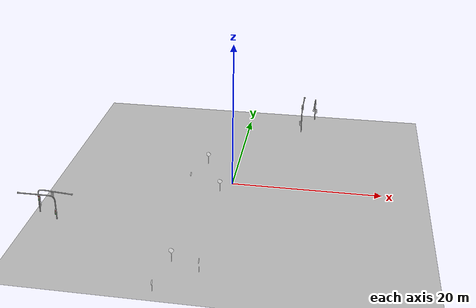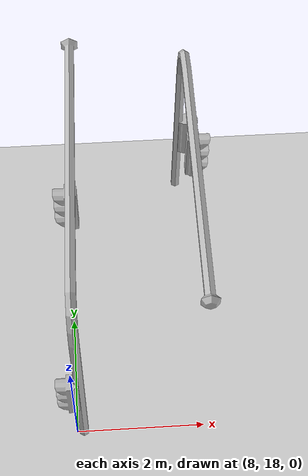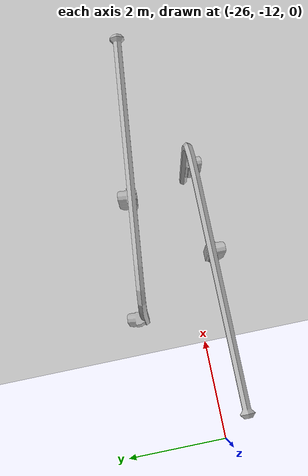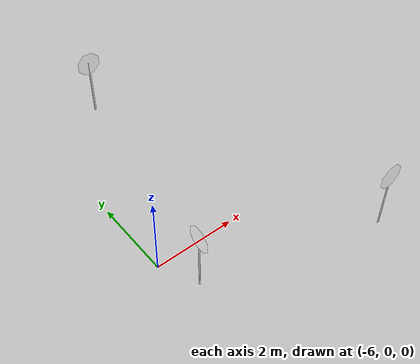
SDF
<sdf version="1.6">
 <world name="default">
  <scene>
   <grid>1</grid>
   <ambient>0.4 0.4 0.4 1</ambient>
   <background>0.7 0.7 0.7 1</background>
   <shadows>1</shadows>
  </scene>
  <light name="sun" type="directional">
   <pose>0 0 10 0 -0 0</pose>
   <diffuse>0.8 0.8 0.8 1</diffuse>
   <specular>0.2 0.2 0.2 1</specular>
   <attenuation>
    <range>1000</range>
    <constant>0.9</constant>
    <linear>0.01</linear>
    <quadratic>0.001</quadratic>
   </attenuation>
   <direction>-0.5 0.1 -0.9</direction>
  </light>
  <model name="ground">
   <link name="body">
    <collision name="geom">
     <geometry><plane><normal>0 0 1</normal><size>1 1</size></plane></geometry>
     <surface><friction><ode><mu>100</mu><mu2>50</mu2></ode></friction></surface>
    </collision>
   </link>
   <static>1</static>
  </model>
  <gravity>0 0 -9.8</gravity>
  <magnetic_field>6e-06 2.3e-05 -4.2e-05</magnetic_field>
  <atmosphere type="adiabatic"/>
  <physics name="default_physics" default="0" type="ode">
   <max_step_size>0.001</max_step_size>
   <real_time_factor>1</real_time_factor>
   <real_time_update_rate>1000</real_time_update_rate>
  </physics>
  <audio><device>default</device></audio>
  <spherical_coordinates>
   <surface_model>EARTH_WGS84</surface_model>
   <latitude_deg>0</latitude_deg>
   <longitude_deg>0</longitude_deg>
   <elevation>0</elevation>
   <heading_deg>0</heading_deg>
  </spherical_coordinates>
  <model name="track">
   <pose>1 -1 0 0 -0 0</pose>
   <static>1</static>
   <link name="link">
    <collision name="collision">
     <geometry><plane><size>50 50</size><normal>0 0 1</normal></plane></geometry>
     <surface><friction><ode><mu>100</mu><mu2>50</mu2></ode></friction></surface>
    </collision>
    <visual name="visual">
     <geometry><plane><size>50 50</size><normal>0 0 1</normal></plane></geometry>
     <material>
      <script><uri>file://media/materials/scripts/smile.material</uri><name>Smile/Track</name></script>
     </material>
    </visual>
   </link>
  </model>
  <model name="stop_light_post">
   <static>1</static>
   <link name="link">
    <collision name="post">
     <geometry>
      <mesh><uri>model://stop_light_post/meshes/stop_light_post.obj</uri><scale>0.01 0.01 0.01</scale></mesh>
     </geometry>
    </collision>
    <visual name="post">
     <geometry>
      <mesh><uri>model://stop_light_post/meshes/stop_light_post.obj</uri><scale>0.01 0.01 0.01</scale></mesh>
     </geometry>
    </visual>
   </link>
   <static>1</static>
   <link name="right_light::link">
    <collision name="collision">
     <geometry>
      <mesh><uri>model://stop_light/meshes/stop_light.obj</uri><scale>0.01 0.01 0.01</scale></mesh>
     </geometry>
    </collision>
    <visual name="frame">
     <geometry>
      <mesh><uri>model://stop_light/meshes/stop_light.obj</uri><scale>0.01 0.01 0.01</scale></mesh>
     </geometry>
    </visual>
    <visual name="red">
     <pose>-0.001123 -0.082251 -0.147514 0 -0 0</pose>
     <geometry><sphere><radius>0.1012</radius></sphere></geometry>
     <material>
      <script>
       <uri>model://stop_light/materials/scripts/</uri>
       <uri>model://stop_light/materials/textures/</uri>
       <name>StopLight/Light</name>
      </script>
      <ambient>1 0 0 1</ambient>
      <specular>1 0 0 1</specular>
     </material>
    </visual>
    <visual name="yellow">
     <pose>-0.001123 -0.082251 -0.402 0 -0 0</pose>
     <geometry><sphere><radius>0.1012</radius></sphere></geometry>
     <material>
      <script>
       <uri>model://stop_light/materials/scripts/</uri>
       <uri>model://stop_light/materials/textures/</uri>
       <name>StopLight/Light</name>
      </script>
      <ambient>1 1 0 1</ambient>
      <specular>1 1 0 1</specular>
     </material>
    </visual>
    <visual name="green">
     <pose>-0.001123 -0.082251 -0.655 0 -0 0</pose>
     <geometry><sphere><radius>0.1012</radius></sphere></geometry>
     <material>
      <script>
       <uri>model://stop_light/materials/scripts/</uri>
       <uri>model://stop_light/materials/textures/</uri>
       <name>StopLight/Light</name>
      </script>
      <ambient>0 1 0 1</ambient>
      <specular>0 1 0 1</specular>
     </material>
    </visual>
    <pose>0 -0.05 4 0 -0 0</pose>
   </link>
   <static>1</static>
   <link name="center_light::link">
    <collision name="collision">
     <geometry>
      <mesh><uri>model://stop_light/meshes/stop_light.obj</uri><scale>0.01 0.01 0.01</scale></mesh>
     </geometry>
    </collision>
    <visual name="frame">
     <geometry>
      <mesh><uri>model://stop_light/meshes/stop_light.obj</uri><scale>0.01 0.01 0.01</scale></mesh>
     </geometry>
    </visual>
    <visual name="red">
     <pose>-0.001123 -0.082251 -0.147514 0 -0 0</pose>
     <geometry><sphere><radius>0.1012</radius></sphere></geometry>
     <material>
      <script>
       <uri>model://stop_light/materials/scripts/</uri>
       <uri>model://stop_light/materials/textures/</uri>
       <name>StopLight/Light</name>
      </script>
      <ambient>1 0 0 1</ambient>
      <specular>1 0 0 1</specular>
     </material>
    </visual>
    <visual name="yellow">
     <pose>-0.001123 -0.082251 -0.402 0 -0 0</pose>
     <geometry><sphere><radius>0.1012</radius></sphere></geometry>
     <material>
      <script>
       <uri>model://stop_light/materials/scripts/</uri>
       <uri>model://stop_light/materials/textures/</uri>
       <name>StopLight/Light</name>
      </script>
      <ambient>1 1 0 1</ambient>
      <specular>1 1 0 1</specular>
     </material>
    </visual>
    <visual name="green">
     <pose>-0.001123 -0.082251 -0.655 0 -0 0</pose>
     <geometry><sphere><radius>0.1012</radius></sphere></geometry>
     <material>
      <script>
       <uri>model://stop_light/materials/scripts/</uri>
       <uri>model://stop_light/materials/textures/</uri>
       <name>StopLight/Light</name>
      </script>
      <ambient>0 1 0 1</ambient>
      <specular>0 1 0 1</specular>
     </material>
    </visual>
    <pose>-2 0.04 5.82 0 -0 0</pose>
   </link>
   <pose>8.10426 17.9995 -2.20286 0 0 -1.58993</pose>
  </model>
  <model name="stop_light_post_0">
   <static>1</static>
   <link name="link">
    <collision name="post">
     <geometry>
      <mesh><uri>model://stop_light_post/meshes/stop_light_post.obj</uri><scale>0.01 0.01 0.01</scale></mesh>
     </geometry>
    </collision>
    <visual name="post">
     <geometry>
      <mesh><uri>model://stop_light_post/meshes/stop_light_post.obj</uri><scale>0.01 0.01 0.01</scale></mesh>
     </geometry>
    </visual>
   </link>
   <static>1</static>
   <link name="right_light::link">
    <collision name="collision">
     <geometry>
      <mesh><uri>model://stop_light/meshes/stop_light.obj</uri><scale>0.01 0.01 0.01</scale></mesh>
     </geometry>
    </collision>
    <visual name="frame">
     <geometry>
      <mesh><uri>model://stop_light/meshes/stop_light.obj</uri><scale>0.01 0.01 0.01</scale></mesh>
     </geometry>
    </visual>
    <visual name="red">
     <pose>-0.001123 -0.082251 -0.147514 0 -0 0</pose>
     <geometry><sphere><radius>0.1012</radius></sphere></geometry>
     <material>
      <script>
       <uri>model://stop_light/materials/scripts/</uri>
       <uri>model://stop_light/materials/textures/</uri>
       <name>StopLight/Light</name>
      </script>
      <ambient>1 0 0 1</ambient>
      <specular>1 0 0 1</specular>
     </material>
    </visual>
    <visual name="yellow">
     <pose>-0.001123 -0.082251 -0.402 0 -0 0</pose>
     <geometry><sphere><radius>0.1012</radius></sphere></geometry>
     <material>
      <script>
       <uri>model://stop_light/materials/scripts/</uri>
       <uri>model://stop_light/materials/textures/</uri>
       <name>StopLight/Light</name>
      </script>
      <ambient>1 1 0 1</ambient>
      <specular>1 1 0 1</specular>
     </material>
    </visual>
    <visual name="green">
     <pose>-0.001123 -0.082251 -0.655 0 -0 0</pose>
     <geometry><sphere><radius>0.1012</radius></sphere></geometry>
     <material>
      <script>
       <uri>model://stop_light/materials/scripts/</uri>
       <uri>model://stop_light/materials/textures/</uri>
       <name>StopLight/Light</name>
      </script>
      <ambient>0 1 0 1</ambient>
      <specular>0 1 0 1</specular>
     </material>
    </visual>
    <pose>0 -0.05 4 0 -0 0</pose>
   </link>
   <static>1</static>
   <link name="center_light::link">
    <collision name="collision">
     <geometry>
      <mesh><uri>model://stop_light/meshes/stop_light.obj</uri><scale>0.01 0.01 0.01</scale></mesh>
     </geometry>
    </collision>
    <visual name="frame">
     <geometry>
      <mesh><uri>model://stop_light/meshes/stop_light.obj</uri><scale>0.01 0.01 0.01</scale></mesh>
     </geometry>
    </visual>
    <visual name="red">
     <pose>-0.001123 -0.082251 -0.147514 0 -0 0</pose>
     <geometry><sphere><radius>0.1012</radius></sphere></geometry>
     <material>
      <script>
       <uri>model://stop_light/materials/scripts/</uri>
       <uri>model://stop_light/materials/textures/</uri>
       <name>StopLight/Light</name>
      </script>
      <ambient>1 0 0 1</ambient>
      <specular>1 0 0 1</specular>
     </material>
    </visual>
    <visual name="yellow">
     <pose>-0.001123 -0.082251 -0.402 0 -0 0</pose>
     <geometry><sphere><radius>0.1012</radius></sphere></geometry>
     <material>
      <script>
       <uri>model://stop_light/materials/scripts/</uri>
       <uri>model://stop_light/materials/textures/</uri>
       <name>StopLight/Light</name>
      </script>
      <ambient>1 1 0 1</ambient>
      <specular>1 1 0 1</specular>
     </material>
    </visual>
    <visual name="green">
     <pose>-0.001123 -0.082251 -0.655 0 -0 0</pose>
     <geometry><sphere><radius>0.1012</radius></sphere></geometry>
     <material>
      <script>
       <uri>model://stop_light/materials/scripts/</uri>
       <uri>model://stop_light/materials/textures/</uri>
       <name>StopLight/Light</name>
      </script>
      <ambient>0 1 0 1</ambient>
      <specular>0 1 0 1</specular>
     </material>
    </visual>
    <pose>-2 0.04 5.82 0 -0 0</pose>
   </link>
   <pose>9.97222 22.9104 -2.23142 0 -0 1.54883</pose>
  </model>
  <model name="Stop Sign">
   <static>1</static>
   <link name="link">
    <collision name="collision">
     <geometry><mesh><uri>model://stop_sign/meshes/stop_sign.dae</uri></mesh></geometry>
    </collision>
    <visual name="visual">
     <geometry><mesh><uri>model://stop_sign/meshes/stop_sign.dae</uri></mesh></geometry>
     <material>
      <script>
       <uri>model://stop_sign/materials/scripts</uri>
       <uri>model://stop_sign/materials/textures</uri>
       <name>StopSign/Diffuse</name>
      </script>
     </material>
    </visual>
   </link>
   <pose>-4.27983 5.26385 0 0 -0 3.12862</pose>
  </model>
  <model name="Stop Sign_0">
   <static>1</static>
   <link name="link">
    <collision name="collision">
     <geometry><mesh><uri>model://stop_sign/meshes/stop_sign.dae</uri></mesh></geometry>
    </collision>
    <visual name="visual">
     <geometry><mesh><uri>model://stop_sign/meshes/stop_sign.dae</uri></mesh></geometry>
     <material>
      <script>
       <uri>model://stop_sign/materials/scripts</uri>
       <uri>model://stop_sign/materials/textures</uri>
       <name>StopSign/Diffuse</name>
      </script>
     </material>
    </visual>
   </link>
   <pose>-5.57571 -0.901496 0 0 0 -1.62958</pose>
  </model>
  <model name="Stop Sign_1">
   <static>1</static>
   <link name="link">
    <collision name="collision">
     <geometry><mesh><uri>model://stop_sign/meshes/stop_sign.dae</uri></mesh></geometry>
    </collision>
    <visual name="visual">
     <geometry><mesh><uri>model://stop_sign/meshes/stop_sign.dae</uri></mesh></geometry>
     <material>
      <script>
       <uri>model://stop_sign/materials/scripts</uri>
       <uri>model://stop_sign/materials/textures</uri>
       <name>StopSign/Diffuse</name>
      </script>
     </material>
    </visual>
   </link>
   <pose>-1.40463 -2.14026 0 0 -0 0</pose>
  </model>
  <model name="stop_light_post_1">
   <static>1</static>
   <link name="link">
    <collision name="post">
     <geometry>
      <mesh><uri>model://stop_light_post/meshes/stop_light_post.obj</uri><scale>0.01 0.01 0.01</scale></mesh>
     </geometry>
    </collision>
    <visual name="post">
     <geometry>
      <mesh><uri>model://stop_light_post/meshes/stop_light_post.obj</uri><scale>0.01 0.01 0.01</scale></mesh>
     </geometry>
    </visual>
   </link>
   <static>1</static>
   <link name="right_light::link">
    <collision name="collision">
     <geometry>
      <mesh><uri>model://stop_light/meshes/stop_light.obj</uri><scale>0.01 0.01 0.01</scale></mesh>
     </geometry>
    </collision>
    <visual name="frame">
     <geometry>
      <mesh><uri>model://stop_light/meshes/stop_light.obj</uri><scale>0.01 0.01 0.01</scale></mesh>
     </geometry>
    </visual>
    <visual name="red">
     <pose>-0.001123 -0.082251 -0.147514 0 -0 0</pose>
     <geometry><sphere><radius>0.1012</radius></sphere></geometry>
     <material>
      <script>
       <uri>model://stop_light/materials/scripts/</uri>
       <uri>model://stop_light/materials/textures/</uri>
       <name>StopLight/Light</name>
      </script>
      <ambient>1 0 0 1</ambient>
      <specular>1 0 0 1</specular>
     </material>
    </visual>
    <visual name="yellow">
     <pose>-0.001123 -0.082251 -0.402 0 -0 0</pose>
     <geometry><sphere><radius>0.1012</radius></sphere></geometry>
     <material>
      <script>
       <uri>model://stop_light/materials/scripts/</uri>
       <uri>model://stop_light/materials/textures/</uri>
       <name>StopLight/Light</name>
      </script>
      <ambient>1 1 0 1</ambient>
      <specular>1 1 0 1</specular>
     </material>
    </visual>
    <visual name="green">
     <pose>-0.001123 -0.082251 -0.655 0 -0 0</pose>
     <geometry><sphere><radius>0.1012</radius></sphere></geometry>
     <material>
      <script>
       <uri>model://stop_light/materials/scripts/</uri>
       <uri>model://stop_light/materials/textures/</uri>
       <name>StopLight/Light</name>
      </script>
      <ambient>0 1 0 1</ambient>
      <specular>0 1 0 1</specular>
     </material>
    </visual>
    <pose>0 -0.05 4 0 -0 0</pose>
   </link>
   <static>1</static>
   <link name="center_light::link">
    <collision name="collision">
     <geometry>
      <mesh><uri>model://stop_light/meshes/stop_light.obj</uri><scale>0.01 0.01 0.01</scale></mesh>
     </geometry>
    </collision>
    <visual name="frame">
     <geometry>
      <mesh><uri>model://stop_light/meshes/stop_light.obj</uri><scale>0.01 0.01 0.01</scale></mesh>
     </geometry>
    </visual>
    <visual name="red">
     <pose>-0.001123 -0.082251 -0.147514 0 -0 0</pose>
     <geometry><sphere><radius>0.1012</radius></sphere></geometry>
     <material>
      <script>
       <uri>model://stop_light/materials/scripts/</uri>
       <uri>model://stop_light/materials/textures/</uri>
       <name>StopLight/Light</name>
      </script>
      <ambient>1 0 0 1</ambient>
      <specular>1 0 0 1</specular>
     </material>
    </visual>
    <visual name="yellow">
     <pose>-0.001123 -0.082251 -0.402 0 -0 0</pose>
     <geometry><sphere><radius>0.1012</radius></sphere></geometry>
     <material>
      <script>
       <uri>model://stop_light/materials/scripts/</uri>
       <uri>model://stop_light/materials/textures/</uri>
       <name>StopLight/Light</name>
      </script>
      <ambient>1 1 0 1</ambient>
      <specular>1 1 0 1</specular>
     </material>
    </visual>
    <visual name="green">
     <pose>-0.001123 -0.082251 -0.655 0 -0 0</pose>
     <geometry><sphere><radius>0.1012</radius></sphere></geometry>
     <material>
      <script>
       <uri>model://stop_light/materials/scripts/</uri>
       <uri>model://stop_light/materials/textures/</uri>
       <name>StopLight/Light</name>
      </script>
      <ambient>0 1 0 1</ambient>
      <specular>0 1 0 1</specular>
     </material>
    </visual>
    <pose>-2 0.04 5.82 0 -0 0</pose>
   </link>
   <pose>-20.5817 -12.255 -2.54904 0 -0 0</pose>
  </model>
  <model name="stop_light_post_2">
   <static>1</static>
   <link name="link">
    <collision name="post">
     <geometry>
      <mesh><uri>model://stop_light_post/meshes/stop_light_post.obj</uri><scale>0.01 0.01 0.01</scale></mesh>
     </geometry>
    </collision>
    <visual name="post">
     <geometry>
      <mesh><uri>model://stop_light_post/meshes/stop_light_post.obj</uri><scale>0.01 0.01 0.01</scale></mesh>
     </geometry>
    </visual>
   </link>
   <static>1</static>
   <link name="right_light::link">
    <collision name="collision">
     <geometry>
      <mesh><uri>model://stop_light/meshes/stop_light.obj</uri><scale>0.01 0.01 0.01</scale></mesh>
     </geometry>
    </collision>
    <visual name="frame">
     <geometry>
      <mesh><uri>model://stop_light/meshes/stop_light.obj</uri><scale>0.01 0.01 0.01</scale></mesh>
     </geometry>
    </visual>
    <visual name="red">
     <pose>-0.001123 -0.082251 -0.147514 0 -0 0</pose>
     <geometry><sphere><radius>0.1012</radius></sphere></geometry>
     <material>
      <script>
       <uri>model://stop_light/materials/scripts/</uri>
       <uri>model://stop_light/materials/textures/</uri>
       <name>StopLight/Light</name>
      </script>
      <ambient>1 0 0 1</ambient>
      <specular>1 0 0 1</specular>
     </material>
    </visual>
    <visual name="yellow">
     <pose>-0.001123 -0.082251 -0.402 0 -0 0</pose>
     <geometry><sphere><radius>0.1012</radius></sphere></geometry>
     <material>
      <script>
       <uri>model://stop_light/materials/scripts/</uri>
       <uri>model://stop_light/materials/textures/</uri>
       <name>StopLight/Light</name>
      </script>
      <ambient>1 1 0 1</ambient>
      <specular>1 1 0 1</specular>
     </material>
    </visual>
    <visual name="green">
     <pose>-0.001123 -0.082251 -0.655 0 -0 0</pose>
     <geometry><sphere><radius>0.1012</radius></sphere></geometry>
     <material>
      <script>
       <uri>model://stop_light/materials/scripts/</uri>
       <uri>model://stop_light/materials/textures/</uri>
       <name>StopLight/Light</name>
      </script>
      <ambient>0 1 0 1</ambient>
      <specular>0 1 0 1</specular>
     </material>
    </visual>
    <pose>0 -0.05 4 0 -0 0</pose>
   </link>
   <static>1</static>
   <link name="center_light::link">
    <collision name="collision">
     <geometry>
      <mesh><uri>model://stop_light/meshes/stop_light.obj</uri><scale>0.01 0.01 0.01</scale></mesh>
     </geometry>
    </collision>
    <visual name="frame">
     <geometry>
      <mesh><uri>model://stop_light/meshes/stop_light.obj</uri><scale>0.01 0.01 0.01</scale></mesh>
     </geometry>
    </visual>
    <visual name="red">
     <pose>-0.001123 -0.082251 -0.147514 0 -0 0</pose>
     <geometry><sphere><radius>0.1012</radius></sphere></geometry>
     <material>
      <script>
       <uri>model://stop_light/materials/scripts/</uri>
       <uri>model://stop_light/materials/textures/</uri>
       <name>StopLight/Light</name>
      </script>
      <ambient>1 0 0 1</ambient>
      <specular>1 0 0 1</specular>
     </material>
    </visual>
    <visual name="yellow">
     <pose>-0.001123 -0.082251 -0.402 0 -0 0</pose>
     <geometry><sphere><radius>0.1012</radius></sphere></geometry>
     <material>
      <script>
       <uri>model://stop_light/materials/scripts/</uri>
       <uri>model://stop_light/materials/textures/</uri>
       <name>StopLight/Light</name>
      </script>
      <ambient>1 1 0 1</ambient>
      <specular>1 1 0 1</specular>
     </material>
    </visual>
    <visual name="green">
     <pose>-0.001123 -0.082251 -0.655 0 -0 0</pose>
     <geometry><sphere><radius>0.1012</radius></sphere></geometry>
     <material>
      <script>
       <uri>model://stop_light/materials/scripts/</uri>
       <uri>model://stop_light/materials/textures/</uri>
       <name>StopLight/Light</name>
      </script>
      <ambient>0 1 0 1</ambient>
      <specular>0 1 0 1</specular>
     </material>
    </visual>
    <pose>-2 0.04 5.82 0 -0 0</pose>
   </link>
   <pose>-23.358 -10.8982 -2.6187 0 -0 3.03283</pose>
  </model>
  <model name="Stop Sign_2">
   <static>1</static>
   <link name="link">
    <collision name="collision">
     <geometry><mesh><uri>model://stop_sign/meshes/stop_sign.dae</uri></mesh></geometry>
    </collision>
    <visual name="visual">
     <geometry><mesh><uri>model://stop_sign/meshes/stop_sign.dae</uri></mesh></geometry>
     <material>
      <script>
       <uri>model://stop_sign/materials/scripts</uri>
       <uri>model://stop_sign/materials/textures</uri>
       <name>StopSign/Diffuse</name>
      </script>
     </material>
    </visual>
   </link>
   <pose>-0.777093 -20.2208 0 0 -0 1.57306</pose>
  </model>
  <model name="Stop Sign_3">
   <static>1</static>
   <link name="link">
    <collision name="collision">
     <geometry><mesh><uri>model://stop_sign/meshes/stop_sign.dae</uri></mesh></geometry>
    </collision>
    <visual name="visual">
     <geometry><mesh><uri>model://stop_sign/meshes/stop_sign.dae</uri></mesh></geometry>
     <material>
      <script>
       <uri>model://stop_sign/materials/scripts</uri>
       <uri>model://stop_sign/materials/textures</uri>
       <name>StopSign/Diffuse</name>
      </script>
     </material>
    </visual>
   </link>
   <pose>-5.04293 -24.815 0 0 0 -1.59226</pose>
  </model>
  <model name="Stop Sign_4">
   <static>1</static>
   <link name="link">
    <collision name="collision">
     <geometry><mesh><uri>model://stop_sign/meshes/stop_sign.dae</uri></mesh></geometry>
    </collision>
    <visual name="visual">
     <geometry><mesh><uri>model://stop_sign/meshes/stop_sign.dae</uri></mesh></geometry>
     <material>
      <script>
       <uri>model://stop_sign/materials/scripts</uri>
       <uri>model://stop_sign/materials/textures</uri>
       <name>StopSign/Diffuse</name>
      </script>
     </material>
    </visual>
   </link>
   <pose>-4.28639 -18.7554 0 0 -0 3.13347</pose>
  </model>
 </world>
</sdf>
